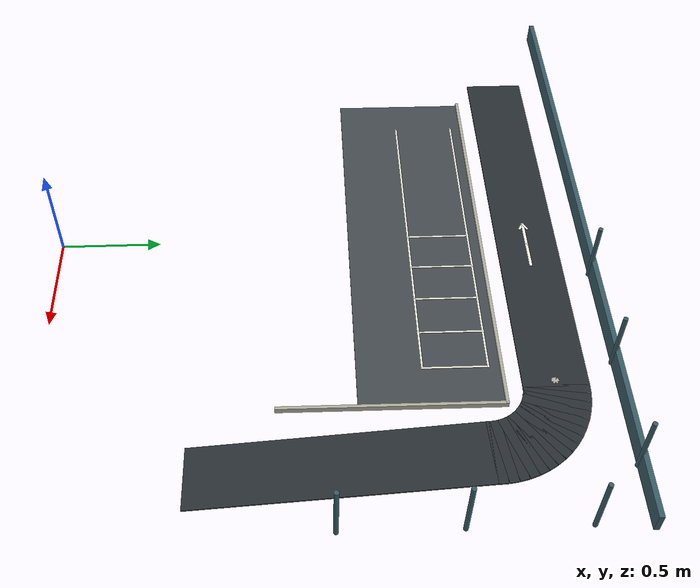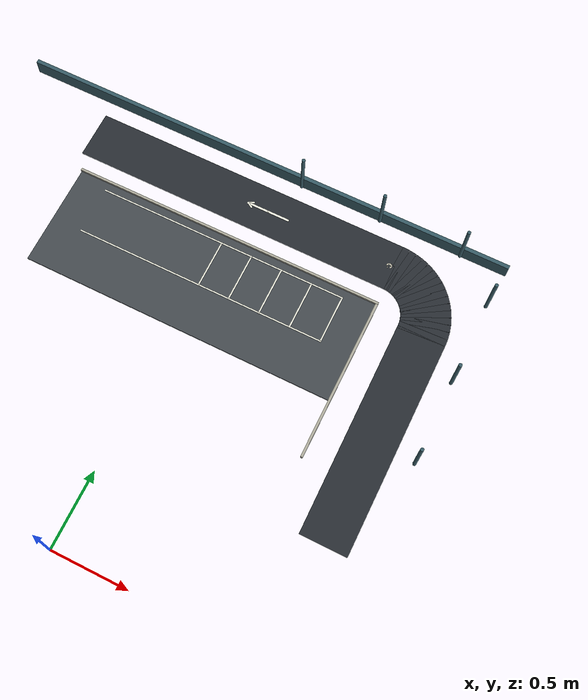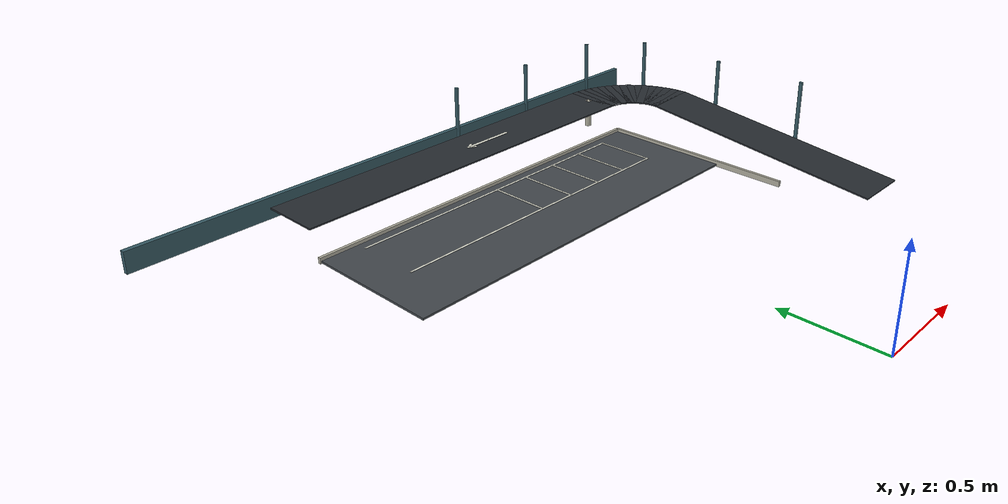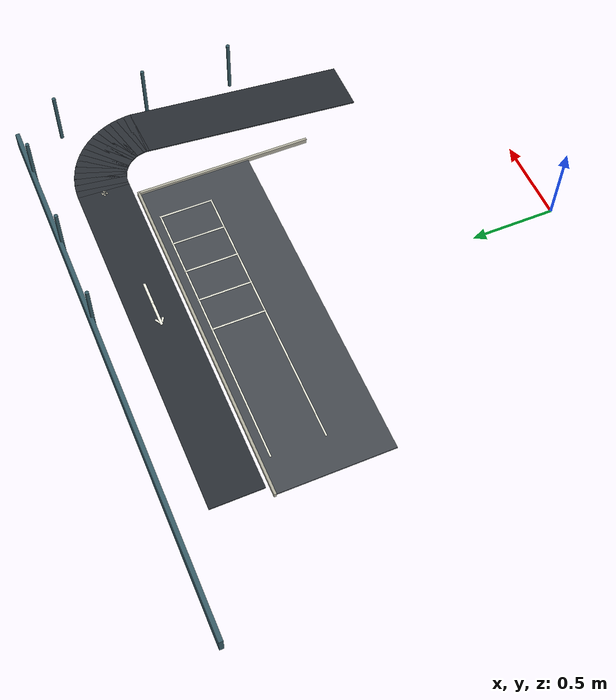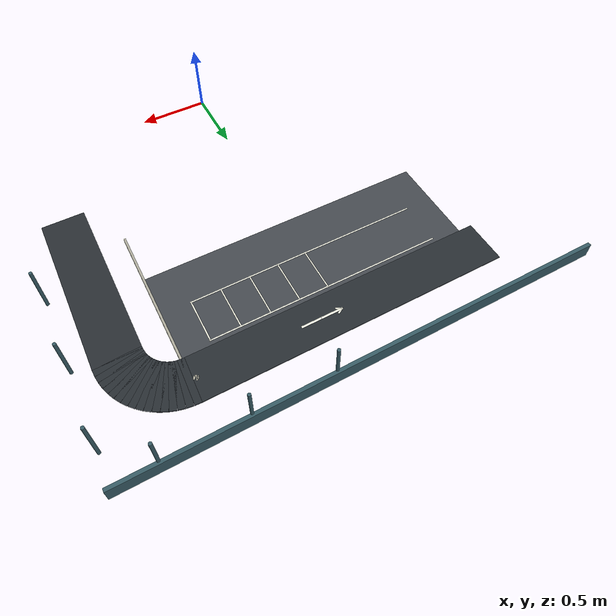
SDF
<sdf version="1.6">
 <world name="sandbox">
  <include><uri>model://sun</uri></include>
  <model name="fence_north">
   <static>true</static>
   <pose>0.000000 2.680000 0.055000 0.000000 0.000000 0.000000</pose>
   <link name="body">
    <collision name="collision">
     <geometry><box><size>3.300000 0.025000 0.110000</size></box></geometry>
    </collision>
    <visual name="visual">
     <geometry><box><size>3.300000 0.025000 0.110000</size></box></geometry>
     <material><ambient>0.22 0.36 0.40 1</ambient><diffuse>0.22 0.36 0.40 1</diffuse></material>
    </visual>
   </link>
  </model>
  <model name="fence_post_east_7">
   <static>true</static>
   <pose>1.620000 1.350000 0.170000 0.000000 0.000000 0.000000</pose>
   <link name="body">
    <collision name="collision">
     <geometry><cylinder><radius>0.011000</radius><length>0.340000</length></cylinder></geometry>
    </collision>
    <visual name="visual">
     <geometry><cylinder><radius>0.011000</radius><length>0.340000</length></cylinder></geometry>
     <material><ambient>0.22 0.36 0.40 1</ambient><diffuse>0.22 0.36 0.40 1</diffuse></material>
    </visual>
   </link>
  </model>
  <model name="fence_post_east_8">
   <static>true</static>
   <pose>1.620000 1.890000 0.170000 0.000000 0.000000 0.000000</pose>
   <link name="body">
    <collision name="collision">
     <geometry><cylinder><radius>0.011000</radius><length>0.340000</length></cylinder></geometry>
    </collision>
    <visual name="visual">
     <geometry><cylinder><radius>0.011000</radius><length>0.340000</length></cylinder></geometry>
     <material><ambient>0.22 0.36 0.40 1</ambient><diffuse>0.22 0.36 0.40 1</diffuse></material>
    </visual>
   </link>
  </model>
  <model name="fence_post_east_9">
   <static>true</static>
   <pose>1.620000 2.430000 0.170000 0.000000 0.000000 0.000000</pose>
   <link name="body">
    <collision name="collision">
     <geometry><cylinder><radius>0.011000</radius><length>0.340000</length></cylinder></geometry>
    </collision>
    <visual name="visual">
     <geometry><cylinder><radius>0.011000</radius><length>0.340000</length></cylinder></geometry>
     <material><ambient>0.22 0.36 0.40 1</ambient><diffuse>0.22 0.36 0.40 1</diffuse></material>
    </visual>
   </link>
  </model>
  <model name="fence_post_north_3">
   <static>true</static>
   <pose>0.270000 2.670000 0.170000 0.000000 0.000000 0.000000</pose>
   <link name="body">
    <collision name="collision">
     <geometry><cylinder><radius>0.011000</radius><length>0.340000</length></cylinder></geometry>
    </collision>
    <visual name="visual">
     <geometry><cylinder><radius>0.011000</radius><length>0.340000</length></cylinder></geometry>
     <material><ambient>0.22 0.36 0.40 1</ambient><diffuse>0.22 0.36 0.40 1</diffuse></material>
    </visual>
   </link>
  </model>
  <model name="fence_post_north_4">
   <static>true</static>
   <pose>0.810000 2.670000 0.170000 0.000000 0.000000 0.000000</pose>
   <link name="body">
    <collision name="collision">
     <geometry><cylinder><radius>0.011000</radius><length>0.340000</length></cylinder></geometry>
    </collision>
    <visual name="visual">
     <geometry><cylinder><radius>0.011000</radius><length>0.340000</length></cylinder></geometry>
     <material><ambient>0.22 0.36 0.40 1</ambient><diffuse>0.22 0.36 0.40 1</diffuse></material>
    </visual>
   </link>
  </model>
  <model name="fence_post_north_5">
   <static>true</static>
   <pose>1.350000 2.670000 0.170000 0.000000 0.000000 0.000000</pose>
   <link name="body">
    <collision name="collision">
     <geometry><cylinder><radius>0.011000</radius><length>0.340000</length></cylinder></geometry>
    </collision>
    <visual name="visual">
     <geometry><cylinder><radius>0.011000</radius><length>0.340000</length></cylinder></geometry>
     <material><ambient>0.22 0.36 0.40 1</ambient><diffuse>0.22 0.36 0.40 1</diffuse></material>
    </visual>
   </link>
  </model>
  <model name="right_ramp">
   <static>true</static>
   <pose>1.350000 1.362500 0.069000 0.000000 -0.115707 1.570796</pose>
   <link name="body">
    <collision name="collision">
     <geometry><box><size>1.337000 0.300000 0.008000</size></box></geometry>
    </collision>
    <visual name="visual">
     <geometry><box><size>1.337000 0.300000 0.008000</size></box></geometry>
     <material><ambient>0.16 0.18 0.20 1</ambient><diffuse>0.16 0.18 0.20 1</diffuse></material>
    </visual>
   </link>
  </model>
  <model name="outer_top">
   <static>true</static>
   <pose>0.000000 2.350000 0.146000 0.000000 -0.000000 0.000000</pose>
   <link name="body">
    <collision name="collision">
     <geometry><box><size>2.062000 0.300000 0.008000</size></box></geometry>
    </collision>
    <visual name="visual">
     <geometry><box><size>2.062000 0.300000 0.008000</size></box></geometry>
     <material><ambient>0.16 0.18 0.20 1</ambient><diffuse>0.16 0.18 0.20 1</diffuse></material>
    </visual>
   </link>
  </model>
  <model name="corner_top_right_00">
   <static>true</static>
   <pose>1.040928 2.349218 0.146000 0.000000 -0.000000 -0.049087</pose>
   <link name="body">
    <collision name="collision">
     <geometry><box><size>0.043894 0.300000 0.008000</size></box></geometry>
    </collision>
    <visual name="visual">
     <geometry><box><size>0.043894 0.300000 0.008000</size></box></geometry>
     <material><ambient>0.16 0.18 0.20 1</ambient><diffuse>0.16 0.18 0.20 1</diffuse></material>
    </visual>
   </link>
  </model>
  <model name="corner_top_right_01">
   <static>true</static>
   <pose>1.072630 2.346095 0.146000 0.000000 -0.000000 -0.147262</pose>
   <link name="body">
    <collision name="collision">
     <geometry><box><size>0.043894 0.300000 0.008000</size></box></geometry>
    </collision>
    <visual name="visual">
     <geometry><box><size>0.043894 0.300000 0.008000</size></box></geometry>
     <material><ambient>0.16 0.18 0.20 1</ambient><diffuse>0.16 0.18 0.20 1</diffuse></material>
    </visual>
   </link>
  </model>
  <model name="corner_top_right_02">
   <static>true</static>
   <pose>1.103873 2.339880 0.146000 0.000000 -0.000000 -0.245437</pose>
   <link name="body">
    <collision name="collision">
     <geometry><box><size>0.043894 0.300000 0.008000</size></box></geometry>
    </collision>
    <visual name="visual">
     <geometry><box><size>0.043894 0.300000 0.008000</size></box></geometry>
     <material><ambient>0.16 0.18 0.20 1</ambient><diffuse>0.16 0.18 0.20 1</diffuse></material>
    </visual>
   </link>
  </model>
  <model name="corner_top_right_03">
   <static>true</static>
   <pose>1.134357 2.330633 0.146000 0.000000 -0.000000 -0.343612</pose>
   <link name="body">
    <collision name="collision">
     <geometry><box><size>0.043894 0.300000 0.008000</size></box></geometry>
    </collision>
    <visual name="visual">
     <geometry><box><size>0.043894 0.300000 0.008000</size></box></geometry>
     <material><ambient>0.16 0.18 0.20 1</ambient><diffuse>0.16 0.18 0.20 1</diffuse></material>
    </visual>
   </link>
  </model>
  <model name="corner_top_right_04">
   <static>true</static>
   <pose>1.163788 2.318443 0.146000 0.000000 -0.000000 -0.441786</pose>
   <link name="body">
    <collision name="collision">
     <geometry><box><size>0.043894 0.300000 0.008000</size></box></geometry>
    </collision>
    <visual name="visual">
     <geometry><box><size>0.043894 0.300000 0.008000</size></box></geometry>
     <material><ambient>0.16 0.18 0.20 1</ambient><diffuse>0.16 0.18 0.20 1</diffuse></material>
    </visual>
   </link>
  </model>
  <model name="corner_top_right_05">
   <static>true</static>
   <pose>1.191882 2.303426 0.146000 0.000000 -0.000000 -0.539961</pose>
   <link name="body">
    <collision name="collision">
     <geometry><box><size>0.043894 0.300000 0.008000</size></box></geometry>
    </collision>
    <visual name="visual">
     <geometry><box><size>0.043894 0.300000 0.008000</size></box></geometry>
     <material><ambient>0.16 0.18 0.20 1</ambient><diffuse>0.16 0.18 0.20 1</diffuse></material>
    </visual>
   </link>
  </model>
  <model name="corner_top_right_06">
   <static>true</static>
   <pose>1.218369 2.285728 0.146000 0.000000 -0.000000 -0.638136</pose>
   <link name="body">
    <collision name="collision">
     <geometry><box><size>0.043894 0.300000 0.008000</size></box></geometry>
    </collision>
    <visual name="visual">
     <geometry><box><size>0.043894 0.300000 0.008000</size></box></geometry>
     <material><ambient>0.16 0.18 0.20 1</ambient><diffuse>0.16 0.18 0.20 1</diffuse></material>
    </visual>
   </link>
  </model>
  <model name="corner_top_right_07">
   <static>true</static>
   <pose>1.242994 2.265519 0.146000 0.000000 -0.000000 -0.736311</pose>
   <link name="body">
    <collision name="collision">
     <geometry><box><size>0.043894 0.300000 0.008000</size></box></geometry>
    </collision>
    <visual name="visual">
     <geometry><box><size>0.043894 0.300000 0.008000</size></box></geometry>
     <material><ambient>0.16 0.18 0.20 1</ambient><diffuse>0.16 0.18 0.20 1</diffuse></material>
    </visual>
   </link>
  </model>
  <model name="corner_top_right_08">
   <static>true</static>
   <pose>1.265519 2.242994 0.146000 0.000000 -0.000000 -0.834486</pose>
   <link name="body">
    <collision name="collision">
     <geometry><box><size>0.043894 0.300000 0.008000</size></box></geometry>
    </collision>
    <visual name="visual">
     <geometry><box><size>0.043894 0.300000 0.008000</size></box></geometry>
     <material><ambient>0.16 0.18 0.20 1</ambient><diffuse>0.16 0.18 0.20 1</diffuse></material>
    </visual>
   </link>
  </model>
  <model name="corner_top_right_09">
   <static>true</static>
   <pose>1.285728 2.218369 0.146000 0.000000 -0.000000 -0.932660</pose>
   <link name="body">
    <collision name="collision">
     <geometry><box><size>0.043894 0.300000 0.008000</size></box></geometry>
    </collision>
    <visual name="visual">
     <geometry><box><size>0.043894 0.300000 0.008000</size></box></geometry>
     <material><ambient>0.16 0.18 0.20 1</ambient><diffuse>0.16 0.18 0.20 1</diffuse></material>
    </visual>
   </link>
  </model>
  <model name="corner_top_right_10">
   <static>true</static>
   <pose>1.303426 2.191882 0.146000 0.000000 -0.000000 -1.030835</pose>
   <link name="body">
    <collision name="collision">
     <geometry><box><size>0.043894 0.300000 0.008000</size></box></geometry>
    </collision>
    <visual name="visual">
     <geometry><box><size>0.043894 0.300000 0.008000</size></box></geometry>
     <material><ambient>0.16 0.18 0.20 1</ambient><diffuse>0.16 0.18 0.20 1</diffuse></material>
    </visual>
   </link>
  </model>
  <model name="corner_top_right_11">
   <static>true</static>
   <pose>1.318443 2.163788 0.146000 0.000000 -0.000000 -1.129010</pose>
   <link name="body">
    <collision name="collision">
     <geometry><box><size>0.043894 0.300000 0.008000</size></box></geometry>
    </collision>
    <visual name="visual">
     <geometry><box><size>0.043894 0.300000 0.008000</size></box></geometry>
     <material><ambient>0.16 0.18 0.20 1</ambient><diffuse>0.16 0.18 0.20 1</diffuse></material>
    </visual>
   </link>
  </model>
  <model name="corner_top_right_12">
   <static>true</static>
   <pose>1.330633 2.134357 0.146000 0.000000 -0.000000 -1.227185</pose>
   <link name="body">
    <collision name="collision">
     <geometry><box><size>0.043894 0.300000 0.008000</size></box></geometry>
    </collision>
    <visual name="visual">
     <geometry><box><size>0.043894 0.300000 0.008000</size></box></geometry>
     <material><ambient>0.16 0.18 0.20 1</ambient><diffuse>0.16 0.18 0.20 1</diffuse></material>
    </visual>
   </link>
  </model>
  <model name="corner_top_right_13">
   <static>true</static>
   <pose>1.339880 2.103873 0.146000 0.000000 -0.000000 -1.325359</pose>
   <link name="body">
    <collision name="collision">
     <geometry><box><size>0.043894 0.300000 0.008000</size></box></geometry>
    </collision>
    <visual name="visual">
     <geometry><box><size>0.043894 0.300000 0.008000</size></box></geometry>
     <material><ambient>0.16 0.18 0.20 1</ambient><diffuse>0.16 0.18 0.20 1</diffuse></material>
    </visual>
   </link>
  </model>
  <model name="corner_top_right_14">
   <static>true</static>
   <pose>1.346095 2.072630 0.146000 0.000000 -0.000000 -1.423534</pose>
   <link name="body">
    <collision name="collision">
     <geometry><box><size>0.043894 0.300000 0.008000</size></box></geometry>
    </collision>
    <visual name="visual">
     <geometry><box><size>0.043894 0.300000 0.008000</size></box></geometry>
     <material><ambient>0.16 0.18 0.20 1</ambient><diffuse>0.16 0.18 0.20 1</diffuse></material>
    </visual>
   </link>
  </model>
  <model name="corner_top_right_15">
   <static>true</static>
   <pose>1.349218 2.040928 0.146000 0.000000 -0.000000 -1.521709</pose>
   <link name="body">
    <collision name="collision">
     <geometry><box><size>0.043894 0.300000 0.008000</size></box></geometry>
    </collision>
    <visual name="visual">
     <geometry><box><size>0.043894 0.300000 0.008000</size></box></geometry>
     <material><ambient>0.16 0.18 0.20 1</ambient><diffuse>0.16 0.18 0.20 1</diffuse></material>
    </visual>
   </link>
  </model>
  <model name="viaduct_post_right">
   <static>true</static>
   <pose>1.000000 2.350000 0.075000 0.000000 0.000000 0.000000</pose>
   <link name="body">
    <collision name="collision">
     <geometry><cylinder><radius>0.018000</radius><length>0.150000</length></cylinder></geometry>
    </collision>
    <visual name="visual">
     <geometry><cylinder><radius>0.018000</radius><length>0.150000</length></cylinder></geometry>
     <material><ambient>0.69 0.68 0.62 1</ambient><diffuse>0.69 0.68 0.62 1</diffuse></material>
    </visual>
   </link>
  </model>
  <model name="parking_upper">
   <static>true</static>
   <pose>0.000000 1.810000 0.005000 0.000000 0.000000 0.000000</pose>
   <link name="body">
    <visual name="visual">
     <geometry><box><size>2.050000 0.680000 0.010000</size></box></geometry>
     <material><ambient>0.27 0.29 0.31 1</ambient><diffuse>0.27 0.29 0.31 1</diffuse></material>
    </visual>
   </link>
  </model>
  <model name="parking_edge_top">
   <static>true</static>
   <pose>0.000000 2.150000 0.011000 0.000000 -0.000000 0.000000</pose>
   <link name="body">
    <collision name="collision">
     <geometry><box><size>2.062000 0.015000 0.030000</size></box></geometry>
    </collision>
    <visual name="visual">
     <geometry><box><size>2.062000 0.015000 0.030000</size></box></geometry>
     <material><ambient>0.69 0.68 0.62 1</ambient><diffuse>0.69 0.68 0.62 1</diffuse></material>
    </visual>
   </link>
  </model>
  <model name="parking_edge_right">
   <static>true</static>
   <pose>1.025000 1.625000 0.011000 0.000000 -0.000000 -1.570796</pose>
   <link name="body">
    <collision name="collision">
     <geometry><box><size>1.062000 0.015000 0.030000</size></box></geometry>
    </collision>
    <visual name="visual">
     <geometry><box><size>1.062000 0.015000 0.030000</size></box></geometry>
     <material><ambient>0.69 0.68 0.62 1</ambient><diffuse>0.69 0.68 0.62 1</diffuse></material>
    </visual>
   </link>
  </model>
  <model name="bay_divider_4">
   <static>true</static>
   <pose>0.000000 1.935000 0.013000 0.000000 -0.000000 1.570796</pose>
   <link name="body">
    <visual name="visual">
     <geometry><box><size>0.322000 0.009000 0.002000</size></box></geometry>
     <material><ambient>0.96 0.96 0.90 1</ambient><diffuse>0.96 0.96 0.90 1</diffuse></material>
    </visual>
   </link>
  </model>
  <model name="bay_divider_5">
   <static>true</static>
   <pose>0.205000 1.935000 0.013000 0.000000 -0.000000 1.570796</pose>
   <link name="body">
    <visual name="visual">
     <geometry><box><size>0.322000 0.009000 0.002000</size></box></geometry>
     <material><ambient>0.96 0.96 0.90 1</ambient><diffuse>0.96 0.96 0.90 1</diffuse></material>
    </visual>
   </link>
  </model>
  <model name="bay_divider_6">
   <static>true</static>
   <pose>0.410000 1.935000 0.013000 0.000000 -0.000000 1.570796</pose>
   <link name="body">
    <visual name="visual">
     <geometry><box><size>0.322000 0.009000 0.002000</size></box></geometry>
     <material><ambient>0.96 0.96 0.90 1</ambient><diffuse>0.96 0.96 0.90 1</diffuse></material>
    </visual>
   </link>
  </model>
  <model name="bay_divider_7">
   <static>true</static>
   <pose>0.615000 1.935000 0.013000 0.000000 -0.000000 1.570796</pose>
   <link name="body">
    <visual name="visual">
     <geometry><box><size>0.322000 0.009000 0.002000</size></box></geometry>
     <material><ambient>0.96 0.96 0.90 1</ambient><diffuse>0.96 0.96 0.90 1</diffuse></material>
    </visual>
   </link>
  </model>
  <model name="bay_divider_8">
   <static>true</static>
   <pose>0.820000 1.935000 0.013000 0.000000 -0.000000 1.570796</pose>
   <link name="body">
    <visual name="visual">
     <geometry><box><size>0.322000 0.009000 0.002000</size></box></geometry>
     <material><ambient>0.96 0.96 0.90 1</ambient><diffuse>0.96 0.96 0.90 1</diffuse></material>
    </visual>
   </link>
  </model>
  <model name="bay_rear_line">
   <static>true</static>
   <pose>0.000000 2.090000 0.013000 0.000000 -0.000000 0.000000</pose>
   <link name="body">
    <visual name="visual">
     <geometry><box><size>1.652000 0.009000 0.002000</size></box></geometry>
     <material><ambient>0.96 0.96 0.90 1</ambient><diffuse>0.96 0.96 0.90 1</diffuse></material>
    </visual>
   </link>
  </model>
  <model name="bay_front_line">
   <static>true</static>
   <pose>0.000000 1.780000 0.013000 0.000000 -0.000000 0.000000</pose>
   <link name="body">
    <visual name="visual">
     <geometry><box><size>1.652000 0.009000 0.002000</size></box></geometry>
     <material><ambient>0.96 0.96 0.90 1</ambient><diffuse>0.96 0.96 0.90 1</diffuse></material>
    </visual>
   </link>
  </model>
  <model name="outer_top_cruise_stem">
   <static>true</static>
   <pose>0.257500 2.350000 0.152000 0.000000 -0.000000 3.141593</pose>
   <link name="body">
    <visual name="visual">
     <geometry><box><size>0.147000 0.014000 0.002000</size></box></geometry>
     <material><ambient>0.96 0.96 0.90 1</ambient><diffuse>0.96 0.96 0.90 1</diffuse></material>
    </visual>
   </link>
  </model>
  <model name="outer_top_cruise_straight">
   <static>true</static>
   <pose>0.122500 2.350000 0.152000 0.000000 -0.000000 3.141593</pose>
   <link name="body">
    <visual name="visual">
     <geometry><box><size>0.147000 0.014000 0.002000</size></box></geometry>
     <material><ambient>0.96 0.96 0.90 1</ambient><diffuse>0.96 0.96 0.90 1</diffuse></material>
    </visual>
   </link>
  </model>
  <model name="outer_top_cruise_straight_head_-1">
   <static>true</static>
   <pose>0.070000 2.359000 0.152000 0.000000 -0.000000 -2.601173</pose>
   <link name="body">
    <visual name="visual">
     <geometry><box><size>0.046986 0.011000 0.002000</size></box></geometry>
     <material><ambient>0.96 0.96 0.90 1</ambient><diffuse>0.96 0.96 0.90 1</diffuse></material>
    </visual>
   </link>
  </model>
  <model name="outer_top_cruise_straight_head_1">
   <static>true</static>
   <pose>0.070000 2.341000 0.152000 0.000000 -0.000000 2.601173</pose>
   <link name="body">
    <visual name="visual">
     <geometry><box><size>0.046986 0.011000 0.002000</size></box></geometry>
     <material><ambient>0.96 0.96 0.90 1</ambient><diffuse>0.96 0.96 0.90 1</diffuse></material>
    </visual>
   </link>
  </model>
 </world>
</sdf>
